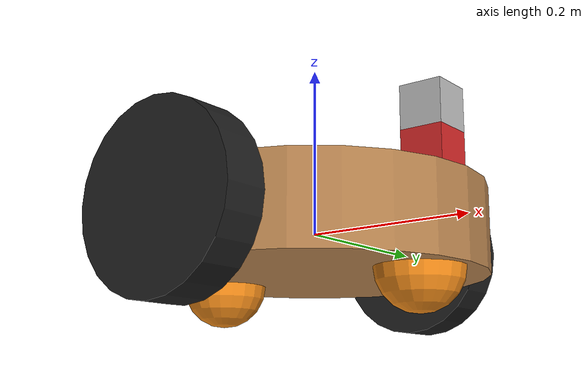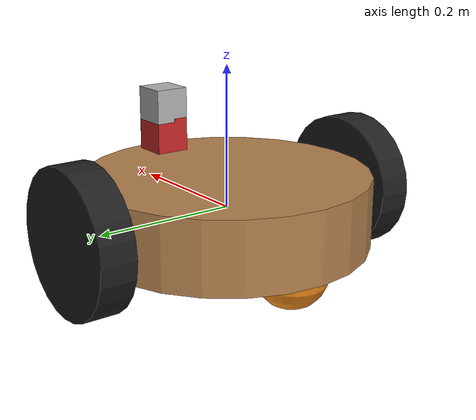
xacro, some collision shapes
<?xml version='1.0'?>

<robot name="slambot" xmlns:xacro="http://www.ros.org/wiki/xacro">

  <!-- ROS2 Control -->

  <gazebo>
    <plugin filename="gz_ros2_control-system" name="gz_ros2_control::GazeboSimROS2ControlPlugin">
      <parameters>$(find slambot)/config/controller.yaml</parameters>
    </plugin>
  </gazebo>

  <ros2_control name="BotGazeboSystem" type="system">
    <hardware>
      <plugin>gz_ros2_control/GazeboSimSystem</plugin>
    </hardware>
    <joint name="left_wheel_hinge">
      <command_interface name="velocity">
        <param name="min">-10.0</param>
        <param name="max">10.0</param>
      </command_interface>
      <state_interface name="position"/>
      <state_interface name="velocity"/>
    </joint>
    <joint name="right_wheel_hinge">
      <command_interface name="velocity">
        <param name="min">-10.0</param>
        <param name="max">10.0</param>
      </command_interface>
      <state_interface name="position"/>
      <state_interface name="velocity"/>
    </joint>
  </ros2_control>

  <!-- 机器人本体结构 -->

  <link name="base_link"></link>
  <joint name="base_link_joint" type="fixed">
    <origin xyz="0 0 0" rpy="0 0 0" />
    <parent link="base_link"/>
    <child link="chassis" />
  </joint>

  <link name='chassis'>
    <pose>0 0 0.1 0 0 0</pose>
    <inertial>
      <mass value="5.0"/>
      <origin xyz="0.0 0 0" rpy="0 0 0"/>
      <inertia
          ixx="0.1" ixy="0" ixz="0"
          iyy="0.1" iyz="0"
          izz="0.1"
      />
    </inertial>
    <collision name='collision'>
      <origin xyz="0 0 0" rpy="0 0 0"/>
      <geometry>
        <box size="0.28 0.28 0.1"/>
      </geometry>
    </collision>
    <visual name='chassis_visual'>
      <origin xyz="0 0 0" rpy=" 0 0 0"/>
      <geometry>
        <cylinder radius="0.2" length="0.1"/>
      </geometry>
    </visual>
  </link>
  <gazebo reference="chassis">
    <material>Gazebo/WoodPallet</material>
  </gazebo>

  <link name="back_caster">
    <inertial>
      <mass value="0.5"/>
      <origin xyz="0.0 0 0" rpy=" 0 0 0"/>
      <inertia
          ixx="0.1" ixy="0" ixz="0"
          iyy="0.1" iyz="0"
          izz="0.1"
      />
    </inertial>
    <collision name='back_caster_collision'>
      <origin xyz="0 0 0" rpy="0 0 0"/>
      <geometry>
        <sphere radius="0.05"/>
      </geometry>
    </collision>
    <visual name='back_caster_visual'>
      <origin xyz="0 0 0" rpy=" 0 0 0"/>
      <geometry>
        <sphere radius="0.05"/>
      </geometry>
    </visual>
  </link>
  <joint name="back_caster_joint" type="fixed">
    <parent link="chassis"/>
    <child link="back_caster"/>
    <origin xyz="-0.14 0 -0.05" rpy="0.0 0.0 0.0"/>
  </joint>
  <gazebo reference="back_caster">
    <mu1>0.0</mu1>
    <mu2>0.0</mu2>
    <material>Gazebo/Orange</material>
  </gazebo>

  <link name="front_caster">
    <inertial>
      <mass value="0.5"/>
      <origin xyz="0.0 0 0" rpy=" 0 0 0"/>
      <inertia
          ixx="0.1" ixy="0" ixz="0"
          iyy="0.1" iyz="0"
          izz="0.1"
      />
    </inertial>
    <collision name='front_caster_collision'>
      <origin xyz="0 0 0" rpy="0 0 0"/>
      <geometry>
        <sphere radius="0.05"/>
      </geometry>
    </collision>
    <visual name='front_caster_visual'>
      <origin xyz="0 0 0" rpy="0 0 0"/>
      <geometry>
        <sphere radius="0.05"/>
      </geometry>
    </visual>
  </link>
  <joint name="front_caster_joint" type="fixed">
    <parent link="chassis"/>
    <child link="front_caster"/>
    <origin xyz="0.14 0 -0.05" rpy="0.0 0.0 0.0"/>
  </joint>
  <gazebo reference="front_caster">
    <mu1>0.0</mu1>
    <mu2>0.0</mu2>
    <material>Gazebo/Orange</material>
  </gazebo>

  <link name="left_wheel">
    <inertial>
      <origin xyz="0.0 0.0 0.0" rpy="1.57079632679 0.0 0"/>
      <mass value="0.8"/>
      <inertia ixx="0.1" ixy="0.0" ixz="0.0" iyy="0.1" iyz="0.0" izz="0.1"/>
    </inertial>
    <visual name="left_wheel_visual">
      <origin xyz="0.0 0.0 0.0" rpy="1.57079632679 0.0 0"/>
      <geometry>
        <cylinder radius="0.1" length="0.05"/>
      </geometry>
    </visual>
    <collision name="left_wheel_collision">
      <origin xyz="0.0 0.0 0.0" rpy="1.57079632679 0.0 0"/>
      <geometry>
        <cylinder radius="0.1" length="0.05"/>
      </geometry>
    </collision>
  </link>
  <joint type="continuous" name="left_wheel_hinge">
    <origin xyz="0 .23 0" rpy="0 0 0"/>
    <child link="left_wheel"/>
    <parent link="chassis"/>
    <axis xyz="0 1 0" rpy="0 0 0"/>
    <limit effort="10000" velocity="1000"/>
    <dynamics damping="0.01" friction="0.1"/>
  </joint>
  <gazebo reference="left_wheel">
    <material>Gazebo/Black</material>
  </gazebo>

  <link name="right_wheel">
    <inertial>
      <origin xyz="0.0 0.0 0.0" rpy="1.57079632679 0.0 0"/>
      <mass value="0.8"/>
      <inertia ixx="0.1" ixy="0.0" ixz="0.0" iyy="0.1" iyz="0.0" izz="0.1"/>
    </inertial>
    <visual name="right_wheel_visual">
      <origin xyz="0.0 0.0 0.0" rpy="1.57079632679 0.0 0"/>
      <geometry>
        <cylinder radius="0.1" length="0.05"/>
      </geometry>
    </visual>
    <collision name="right_wheel_collision">
      <origin xyz="0.0 0.0 0.0" rpy="1.57079632679 0.0 0"/>
      <geometry>
        <cylinder radius="0.1" length="0.05"/>
      </geometry>
    </collision>
  </link>
  <joint type="continuous" name="right_wheel_hinge">
    <origin xyz="0 -.23 0" rpy="0 0 0"/>
    <child link="right_wheel"/>
    <parent link="chassis"/>
    <axis xyz="0 1 0" rpy="0 0 0"/>
    <limit effort="10000" velocity="1000"/>
    <dynamics damping="0.01" friction="0.1"/>
  </joint>
  <gazebo reference="right_wheel">
    <material>Gazebo/Black</material>
  </gazebo>

  <link name="camera">
    <inertial>
      <origin xyz="0.0 0.0 0.025" rpy="0.0 0.0 0.0"/>
      <mass value="0.1"/>
      <inertia ixx="1e-6" ixy="0.0" ixz="0.0" iyy="1e-6" iyz="0.0" izz="1e-6"/>
    </inertial>
    <visual name="camera_visual">
      <origin xyz="0.0 0.0 0.025" rpy="0.0 0.0 0.0"/>
      <geometry>
        <box size="0.05 0.05 0.05"/>
      </geometry>
    </visual>
    <collision name="camera_collision">
      <origin xyz="0.0 0.0 0.025" rpy="0.0 0.0 0.0"/>
      <geometry>
        <box size="0.05 0.05 0.05"/>
      </geometry>
    </collision>
  </link>
  <joint name="camera_joint" type="fixed">
    <parent link="chassis"/>
    <child link="camera"/>
    <origin xyz="0.16 0.0 0.05" rpy="0.0 0.0 0.0"/>
  </joint>
  <gazebo reference="camera">
    <material>Gazebo/Red</material>
    <sensor type="camera" name="camera">
      <pose relative_to="camera">0.025 0 0 0 0 0</pose>
      <update_rate>30.0</update_rate>
      <topic>camera/image</topic>
      <gz_frame_id>camera</gz_frame_id>
      <camera name="head">
        <horizontal_fov>1.3962634</horizontal_fov>
        <image>
          <width>800</width>
          <height>800</height>
          <format>R8G8B8</format>
        </image>
        <clip>
          <near>0.02</near>
          <far>300</far>
        </clip>
      </camera>
    </sensor>
  </gazebo>

  <link name="hokuyo">
    <inertial>
      <origin xyz="0.0 0.0 0.0" rpy="0.0 0.0 0.0"/>
      <mass value="1e-5"/>
      <inertia ixx="1e-6" ixy="0.0" ixz="0.0" iyy="1e-6" iyz="0.0" izz="1e-6"/>
    </inertial>
    <visual name="hokuyo_visual">
      <origin xyz="0.0 0.0 0.0" rpy="0.0 0.0 0.0"/>
      <geometry>
        <mesh filename="file://$(find slambot)/model/hokuyo.dae"/>
      </geometry>
    </visual>
    <collision name="hokuyo_collision">
      <origin xyz="0.0 0.0 0.0" rpy="0.0 0.0 0.0"/>
      <geometry>
        <box size="0.05 0.05 0.05"/>
      </geometry>
    </collision>
  </link>
  <joint name="hokuyo_joint" type="fixed">
    <parent link="camera"/>
    <child link="hokuyo"/>
    <origin xyz="0.0 0.0 0.07" rpy="0.0 0.0 0.0"/>
  </joint>
  <gazebo reference="hokuyo">
    <sensor type="gpu_lidar" name="head_hokuyo_sensor">
      <pose>0 0 0 0 0 0</pose>
      <visualize>false</visualize>
      <update_rate>40</update_rate>
      <topic>scan</topic>
      <gz_frame_id>hokuyo</gz_frame_id>
      <lidar>
        <scan>
          <horizontal>
            <samples>720</samples>
            <resolution>1</resolution>
            <min_angle>-2.356194</min_angle>
            <max_angle>2.356194</max_angle>
          </horizontal>
        </scan>
        <range>
          <min>0.10</min>
          <max>30.0</max>
          <resolution>0.01</resolution>
        </range>
        <noise>
          <type>gaussian</type>
          <mean>0.0</mean>
          <stddev>0.01</stddev>
        </noise>
      </lidar>
    </sensor>
  </gazebo>

  <link name="imu_link"/>
  <joint name="imu_joint" type="fixed">
    <parent link="chassis"/>
    <child link="imu_link"/>
    <origin xyz="0 0 0" rpy="0 0 0"/>
  </joint>
  <gazebo reference="imu_link">
    <gravity>true</gravity>
    <sensor name="imu" type="imu">
      <pose>0 0 0 0 0 0</pose>
      <always_on>true</always_on>
      <update_rate>200</update_rate>
      <visualize>true</visualize>
      <topic>imu</topic>
      <gz_frame_id>imu_link</gz_frame_id>
      <imu>
        <angular_velocity>
          <x>
            <noise type="gaussian">
              <mean>0.0</mean>
              <stddev>0.0</stddev>
            </noise>
          </x>
          <y>
            <noise type="gaussian">
              <mean>0.0</mean>
              <stddev>0.0</stddev>
            </noise>
          </y>
          <z>
            <noise type="gaussian">
              <mean>0.0</mean>
              <stddev>0.0</stddev>
            </noise>
          </z>
        </angular_velocity>
        <linear_acceleration>
          <x>
            <noise type="gaussian">
              <mean>0.0</mean>
              <stddev>0.0</stddev>
            </noise>
          </x>
          <y>
            <noise type="gaussian">
              <mean>0.0</mean>
              <stddev>0.0</stddev>
            </noise>
          </y>
          <z>
            <noise type="gaussian">
              <mean>0.0</mean>
              <stddev>0.0</stddev>
            </noise>
          </z>
        </linear_acceleration>
      </imu>
    </sensor>
  </gazebo>

</robot>
